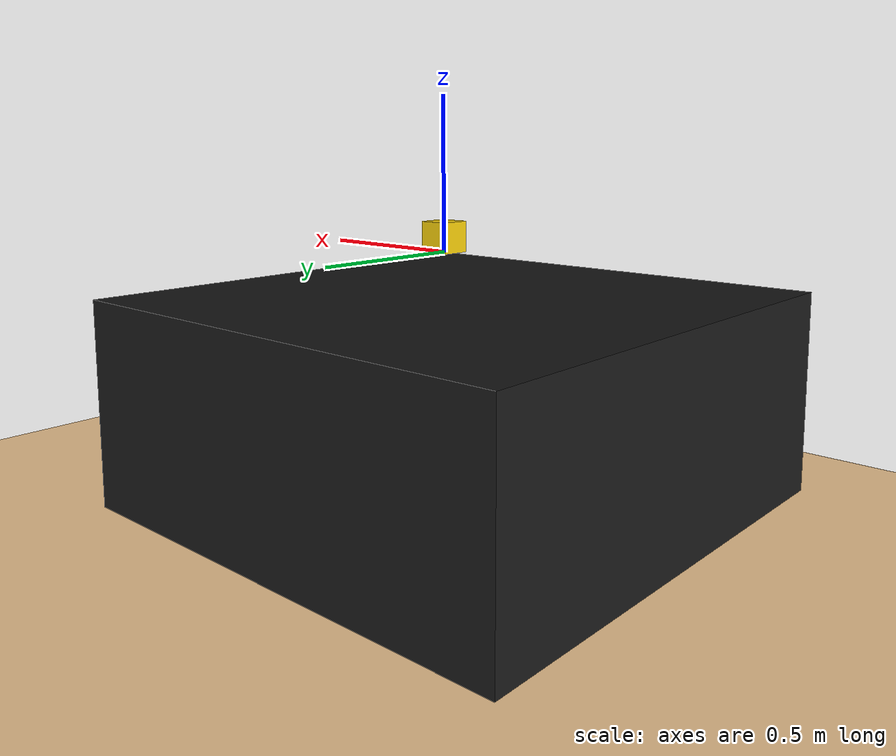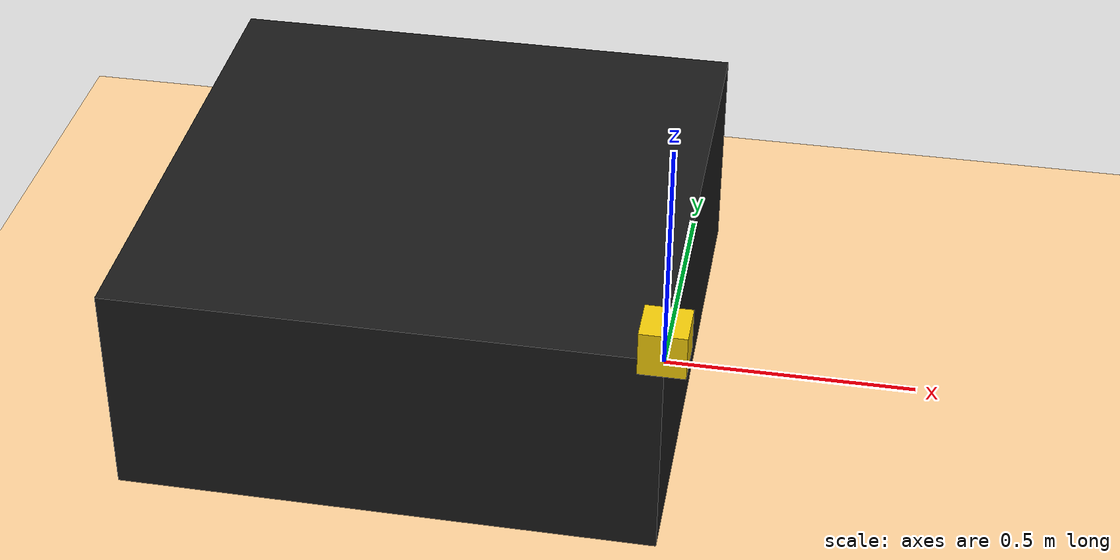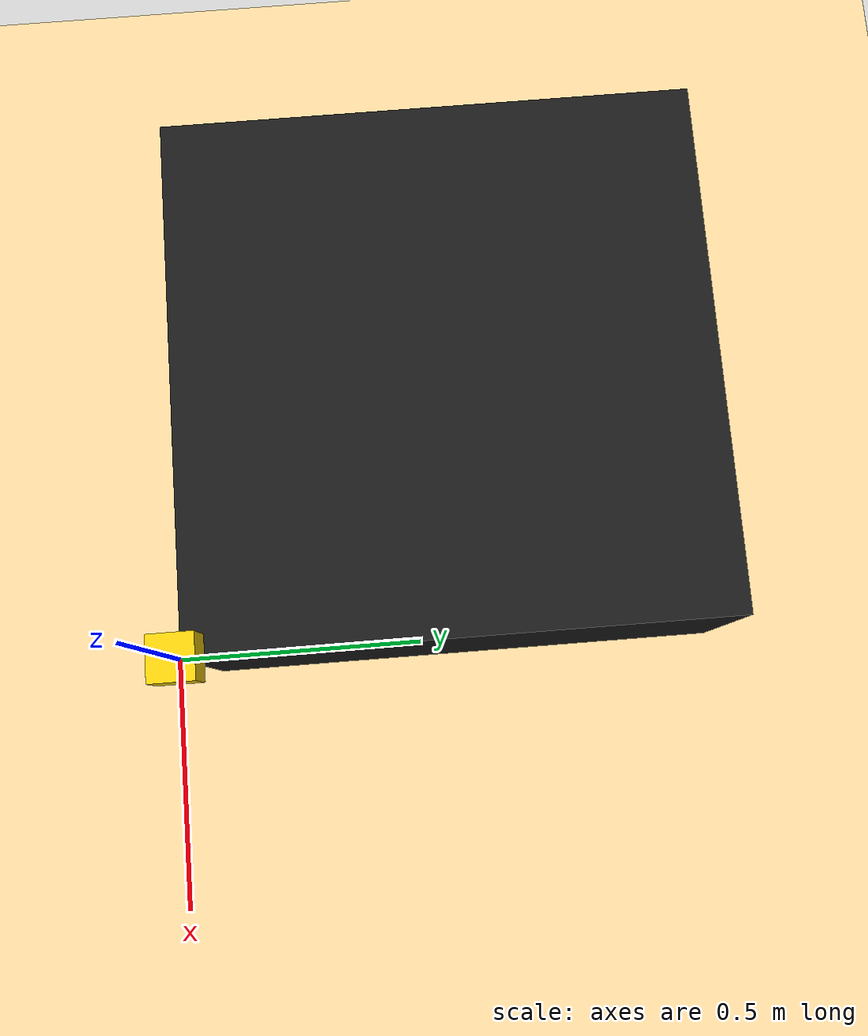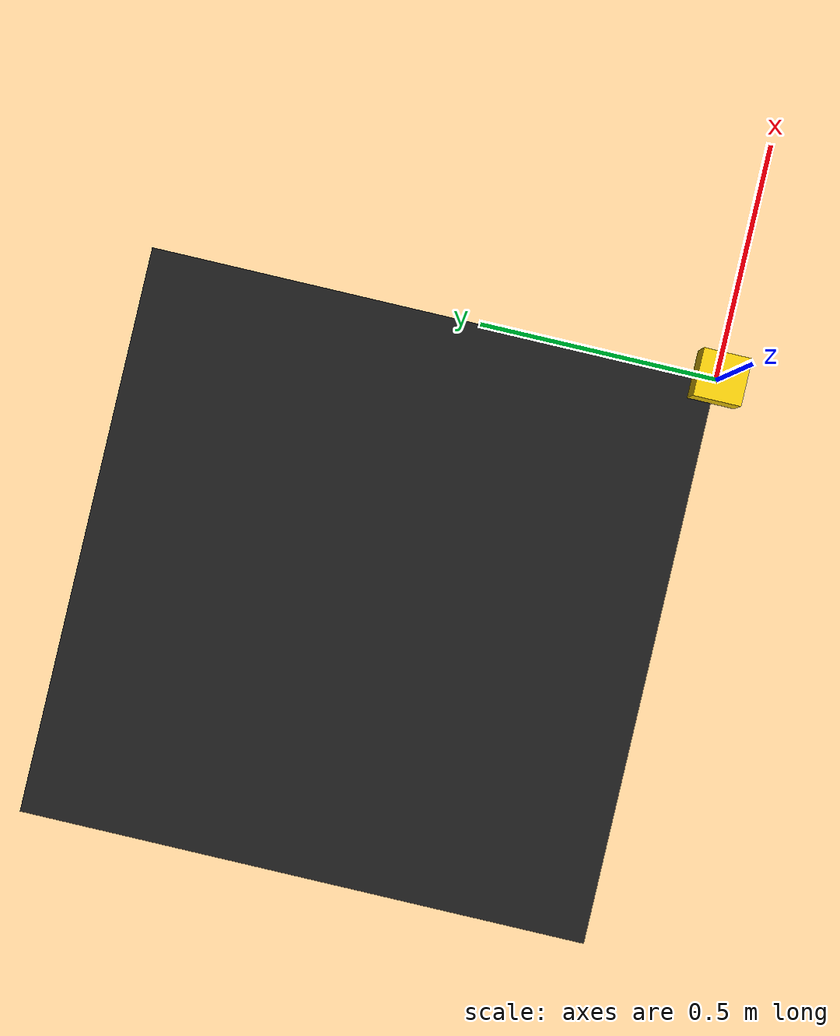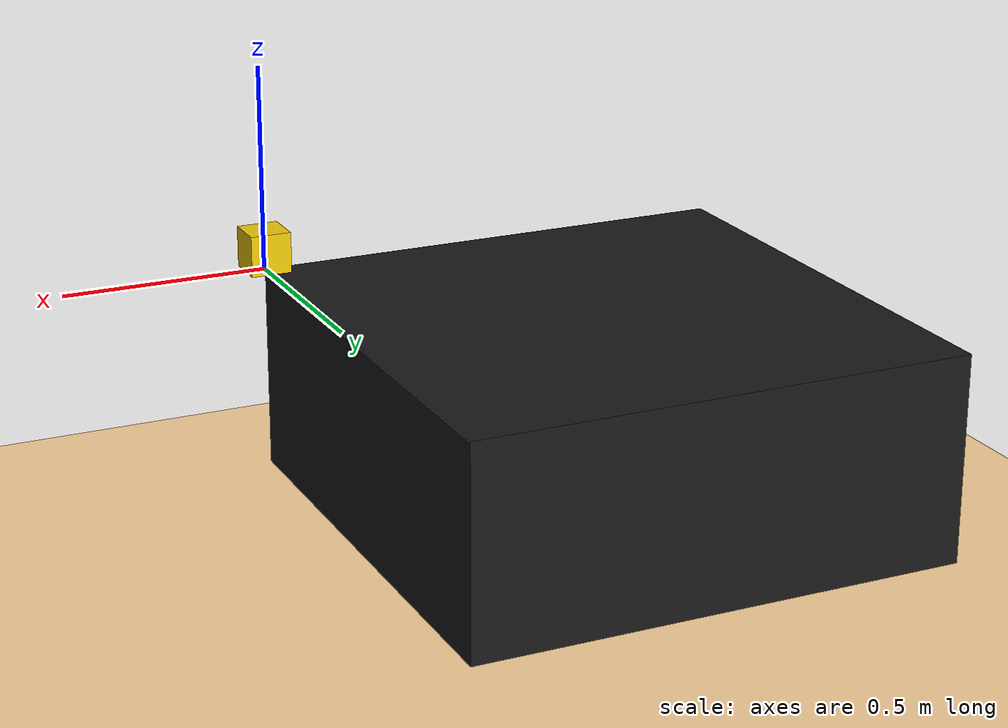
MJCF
<mujoco model="ur5">
    <compiler angle="radian" meshdir="meshes" />

    <option cone="elliptic" timestep="0.02" />

    <size njmax="500" nconmax="100" />

    <visual>
        <map znear="0.001" />
    </visual>

    <default>
        <light castshadow="false" diffuse="1 1 1" />
        <joint frictionloss="1" damping="1" />
        <camera fovy="60" />
        <motor gear="0.8"/>
        <velocity kv="10"/>
        <position kp="5"/>
    </default>

    <asset>
        <mesh file="base.stl" />
        <mesh file="shoulder.stl" />
        <mesh file="upperarm.stl" />
        <mesh file="forearm.stl" />
        <mesh file="wrist1.stl" />
        <mesh file="wrist2.stl" />
        <mesh file="wrist3.stl" />
        <mesh file="kinova_robotiq_coupler.stl" />
        <mesh file="robotiq_85_base_link.stl" />
        <mesh file="robotiq_85_finger_link.stl" />
        <mesh file="robotiq_85_finger_tip_link.stl" />
        <mesh file="robotiq_85_inner_knuckle_link.stl" />
        <mesh file="robotiq_85_knuckle_link.stl" />
        <material name="RobMat" specular="0.9" shininess="0.5" reflectance="0" rgba="0.7 0.7 0.7 1" emission="0.1" />
        <material name="GriMat" specular="0.9" shininess="0.5" reflectance="0" rgba="0.1 0.1 0.1 1" emission="0.1" />
        <material name="BasketMat" specular="0" shininess="0" reflectance="0" rgba="0.26 0.16 0.16796875 1" emission="0" />
        <material name="Light" specular="0" shininess="0.6" reflectance="0.9" rgba="0.5 0.5 1 1" emission="0.7" />
    </asset>

    <worldbody>
        <body pos="-0.16 0.90 0.02" euler="4.71238898 0 3.14159265">
            <body euler="0 -0.82 0">
                <camera name="workbench_camera" euler="0.25 0 0" fovy="43" />
            </body>
        </body>
        <body pos="-1 1.52 0.64" euler="4.71238898 0 3.14159265">
            <body euler="-0.23 0 0">
                <camera name="upper_camera" euler="0 0.09 0" fovy="41" />
            </body>
        </body>

        <light directional="true" pos="-0.5 0.5 3" dir="0 0 -1" />
        <light directional="false" pos="-0.5 0.5 1.5" dir="0 -1 0" />
        <geom name="workbench_down" pos="-0.6 0.6 -0.25" size="0.6 0.6 0.25" type="box" rgba="0.1 0.1 0.1 1" material="BasketMat" />
        <geom name="floor" pos="0 0 -0.66" size="10 10 1" type="plane" rgba="1 0.83 0.61 1" material="BasketMat" />

        <body name="target_body_1" pos="0 0 0.05">
            <geom name="target_1" pos="0 0 0" size="0.05 0.05 0.05" type="box" rgba="0.9529411765 0.8 0.03529411765 1" />
            <joint name="free_x_1" pos="0 0 0" type="slide" ref="0.6" axis="1 0 0" />
            <joint name="free_y_1" pos="0 0 0" type="slide" ref="-0.6" axis="0 1 0" />
        </body>

        <body name="target_body_2" pos="0 0 0.05">
            <geom name="target_2" pos="0 0 0" size="0.05 0.05 0.05" type="box" rgba="0.01568627451 0.262745098 0.6392156863 1" />
            <joint name="free_x_2" pos="0 0 0" type="slide" ref="0.6" axis="1 0 0" />
            <joint name="free_y_2" pos="0 0 0" type="slide" ref="-0.6" axis="0 1 0" />
        </body>

        <body name="target_body_3" pos="0 0 0.05">
            <geom name="target_3" pos="0 0 0" size="0.05 0.05 0.05" type="box" rgba="0.08235294118 0.3058823529 0.03529411765 1" />
            <joint name="free_x_3" pos="0 0 0" type="slide" ref="0.6" axis="1 0 0" />
            <joint name="free_y_3" pos="0 0 0" type="slide" ref="-0.6" axis="0 1 0" />
        </body>

        <body name="target_body_4" pos="0 0 0.05">
            <geom name="target_4" pos="0 0 0" size="0.05 0.05 0.05" type="box" rgba="0.4941176471 0.1176470588 0.04705882353 1" />
            <joint name="free_x_4" pos="0 0 0" type="slide" ref="0.6" axis="1 0 0" />
            <joint name="free_y_4" pos="0 0 0" type="slide" ref="-0.6" axis="0 1 0" />
        </body>

    </worldbody>

</mujoco>
